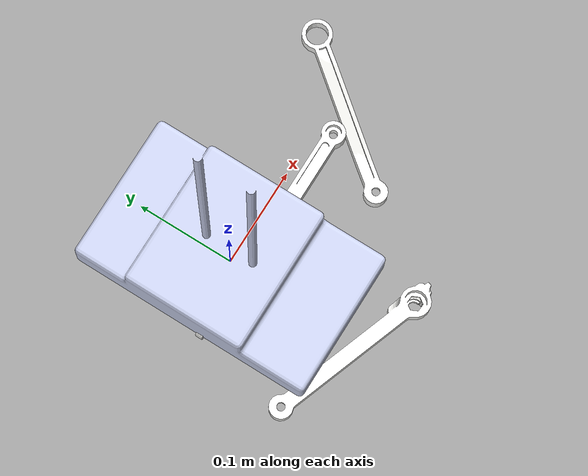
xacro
<?xml version="1.0" encoding="utf-8"?>

<robot
  name="Simple_arm">
  <link
    name="base_link">
    <inertial>
      <origin
        xyz="0 0.00096032 -0.077662"
        rpy="0 0 0" />
      <mass
        value="2.2832" />
      <inertia
        ixx="0.0060931"
        ixy="6.8625E-19"
        ixz="-2.0657E-17"
        iyy="0.013622"
        iyz="-1.0005E-18"
        izz="0.015978" />
    </inertial>
    <visual>
      <origin
        xyz="0 0 0"
        rpy="0 0 0" />
      <geometry>
        <mesh
          filename="model://arm_base_link.STL" />
      </geometry>
      <material
        name="">
        <color
          rgba="0.79216 0.81961 0.93333 1" />
      </material>
    </visual>
    <collision>
      <origin
        xyz="0 0 0"
        rpy="0 0 0" />
      <geometry>
        <mesh
          filename="model://arm_base_link.STL" />
      </geometry>
    </collision>
  </link>
  <link
    name="z_link">
    <inertial>
      <origin
        xyz="6.7446E-15 -0.00054131 0.0054279"
        rpy="0 0 0" />
      <mass
        value="0.061611" />
      <inertia
        ixx="1.1718E-05"
        ixy="-1.9639E-20"
        ixz="1.3001E-21"
        iyy="9.8218E-05"
        iyz="4.4627E-07"
        izz="0.00010811" />
    </inertial>
    <visual>
      <origin
        xyz="0 0 0"
        rpy="0 0 0" />
      <geometry>
        <mesh
          filename="model://z_link.STL" />
      </geometry>
      <material
        name="">
        <color
          rgba="0.79216 0.81961 0.93333 1" />
      </material>
    </visual>
    <collision>
      <origin
        xyz="0 0 0"
        rpy="0 0 0" />
      <geometry>
        <mesh
          filename="model://z_link.STL" />
      </geometry>
    </collision>
  </link>
  <joint
    name="z_pris"
    type="prismatic">
    <origin
      xyz="0 0 -0.05"
      rpy="0 0 0" />
    <parent
      link="base_link" />
    <child
      link="z_link" />
    <axis
      xyz="0 0 1" />
    <limit
      lower="0"
      upper="290"
      effort="0"
      velocity="0" />
  </joint>
  <link
    name="right_shldr_link">
    <inertial>
      <origin
        xyz="-0.016836 -0.05003 -0.039684"
        rpy="0 0 0" />
      <mass
        value="0.025561" />
      <inertia
        ixx="2.9984E-05"
        ixy="-1.1881E-05"
        ixz="-7.1531E-08"
        iyy="6.0928E-06"
        iyz="-2.1295E-07"
        izz="3.495E-05" />
    </inertial>
    <visual>
      <origin
        xyz="0 0 0"
        rpy="0 0 0" />
      <geometry>
        <mesh
          filename="model://right_shldr_link.STL" />
      </geometry>
      <material
        name="">
        <color
          rgba="0.96471 0.96471 0.95294 1" />
      </material>
    </visual>
    <collision>
      <origin
        xyz="0 0 0"
        rpy="0 0 0" />
      <geometry>
        <mesh
          filename="model://right_shldr_link.STL" />
      </geometry>
    </collision>
  </link>
  <joint
    name="right_shldr_rev"
    type="revolute">
    <origin
      xyz="-0.055 -0.01747 0.06"
      rpy="0 0 0" />
    <parent
      link="z_link" />
    <child
      link="right_shldr_link" />
    <axis
      xyz="0 0 1" />
    <limit
      lower="0"
      upper="0"
      effort="0"
      velocity="0" />
  </joint>
  <link
    name="right_elbw_link">
    <inertial>
      <origin
        xyz="0.10495 -0.030838 -0.034081"
        rpy="0 0 0" />
      <mass
        value="0.052137" />
      <inertia
        ixx="3.0576E-05"
        ixy="4.6078E-05"
        ixz="2.9013E-05"
        iyy="0.00018419"
        iyz="-6.4366E-06"
        izz="0.00018284" />
    </inertial>
    <visual>
      <origin
        xyz="0 0 0"
        rpy="0 0 0" />
      <geometry>
        <mesh
          filename="model://right_elbw_link.STL" />
      </geometry>
      <material
        name="">
        <color
          rgba="0.96471 0.96471 0.95294 1" />
      </material>
    </visual>
    <collision>
      <origin
        xyz="0 0 0"
        rpy="0 0 0" />
      <geometry>
        <mesh
          filename="model://right_elbw_link.STL" />
      </geometry>
    </collision>
  </link>
  <joint
    name="right_elbw_rev"
    type="revolute">
    <origin
      xyz="-0.033934 -0.094066 -0.0311"
      rpy="0 0 -0.34621" />
    <parent
      link="right_shldr_link" />
    <child
      link="right_elbw_link" />
    <axis
      xyz="0 0 -1" />
    <limit
      lower="0"
      upper="0"
      effort="0"
      velocity="0" />
  </joint>
  <link
    name="left_shldr_link">
    <inertial>
      <origin
        xyz="0.040977 -0.033277 -0.039684"
        rpy="0 0 0" />
      <mass
        value="0.025561" />
      <inertia
        ixx="1.2418E-05"
        ixy="1.5883E-05"
        ixz="1.743E-07"
        iyy="2.3659E-05"
        iyz="-1.417E-07"
        izz="3.495E-05" />
    </inertial>
    <visual>
      <origin
        xyz="0 0 0"
        rpy="0 0 0" />
      <geometry>
        <mesh
          filename="model://left_shldr_link.STL" />
      </geometry>
      <material
        name="">
        <color
          rgba="0.96471 0.96471 0.95294 1" />
      </material>
    </visual>
    <collision>
      <origin
        xyz="0 0 0"
        rpy="0 0 0" />
      <geometry>
        <mesh
          filename="model://left_shldr_link.STL" />
      </geometry>
    </collision>
  </link>
  <joint
    name="left_shldr_rev"
    type="revolute">
    <origin
      xyz="0.055 -0.01747 0.06"
      rpy="0 0 0" />
    <parent
      link="z_link" />
    <child
      link="left_shldr_link" />
    <axis
      xyz="0 0 1" />
    <limit
      lower="0"
      upper="0"
      effort="0"
      velocity="0" />
  </joint>
  <link
    name="left_elbw_link">
    <inertial>
      <origin
        xyz="-0.07785 -0.0028281 -0.018094"
        rpy="0 0 0" />
      <mass
        value="0.034948" />
      <inertia
        ixx="3.163E-06"
        ixy="-3.6554E-06"
        ixz="1.1206E-05"
        iyy="0.00010476"
        iyz="3.4164E-07"
        izz="0.00010418" />
    </inertial>
    <visual>
      <origin
        xyz="0 0 0"
        rpy="0 0 0" />
      <geometry>
        <mesh
          filename="model://left_elbw_link.STL" />
      </geometry>
      <material
        name="">
        <color
          rgba="0.96471 0.96471 0.95294 1" />
      </material>
    </visual>
    <collision>
      <origin
        xyz="0 0 0"
        rpy="0 0 0" />
      <geometry>
        <mesh
          filename="model://left_elbw_link.STL" />
      </geometry>
    </collision>
  </link>
  <joint
    name="left_elbw_rev"
    type="revolute">
    <origin
      xyz="0.078971 -0.061348 -0.0311"
      rpy="0 0 0.91033" />
    <parent
      link="left_shldr_link" />
    <child
      link="left_elbw_link" />
    <axis
      xyz="0 0 1" />
    <limit
      lower="0"
      upper="0"
      effort="0"
      velocity="0" />
  </joint>
  <ros2_control name="GazeboSystem" type="system">
    <hardware>
      <plugin>gazebo_ros2_control/GazeboSystem</plugin>
    </hardware>

    <joint name="z_pris">
      <command_interface name="position">
        <param name="min">"-1000"</param>
        <param name="max">"1000"</param>
      </command_interface>
      <state_interface name="position"/>
      <state_interface name="velocity"/>
      <state_interface name="effort"/>
    </joint>

    <joint name="right_shldr_rev">
      <command_interface name="position">
        <param name="min">"-1000"</param>
        <param name="max">"1000"</param>
      </command_interface>
      <state_interface name="position"/>
      <state_interface name="velocity"/>
      <state_interface name="effort"/>
    </joint>

    <joint name="right_elbw_rev">
      <command_interface name="position">
        <param name="min">"-1000"</param>
        <param name="max">"1000"</param>
      </command_interface>
      <state_interface name="position"/>
      <state_interface name="velocity"/>
      <state_interface name="effort"/>
    </joint>

    <joint name="left_shldr_rev">
      <command_interface name="position">
        <param name="min">"-1000"</param>
        <param name="max">"1000"</param>
      </command_interface>
      <state_interface name="position"/>
      <state_interface name="velocity"/>
      <state_interface name="effort"/>
    </joint>

    <joint name="left_elbw_rev">
      <command_interface name="position">
        <param name="min">"-1000"</param>
        <param name="max">"1000"</param>
      </command_interface>
      <state_interface name="position"/>
      <state_interface name="velocity"/>
      <state_interface name="effort"/>
    </joint>
  </ros2_control>

  <gazebo>
    <plugin name="gazebo_ros2_control" filename="libgazebo_ros2_control.so">
     <robot_param>robot_description</robot_param>
      <robot_param_node>robot_state_publisher</robot_param_node>
     <parameters>$(find simple_arm)/config/joint_names_Simple_arm.yaml</parameters>
    </plugin>
    <!-- 3D Pose publisher (emulate motion capture) -->
    <!-- See: https://github.com/ros-simulation/gazebo_ros_pkgs/wiki/ROS-2-Migration:-P3D -->
    <plugin name="gazebo_ros_p3d" filename="libgazebo_ros_p3d.so">
      <ros>
        <!-- Add namespace and remap the default topic -->
        <namespace>/simple_arm</namespace>
        <argument>odom:=gazebo_odom</argument>
      </ros>

      <!-- Replace camelCase elements with camel_case ones -->
      <body_name>base_link</body_name>
      <frame_name>world</frame_name>
      <update_rate>50</update_rate> <!-- If set to 0, or don't include, will default to max possible -->
      <xyz_offset>0 0 0</xyz_offset>
      <rpy_offset>0 0 0</rpy_offset>
      <gaussian_noise>0.0001</gaussian_noise>

    </plugin>
  </gazebo>

</robot>
